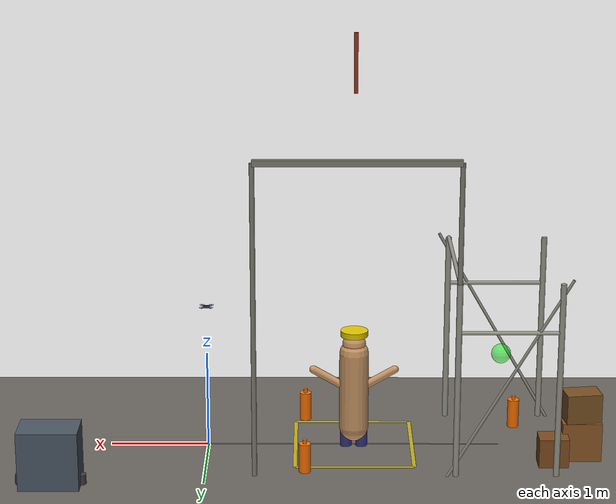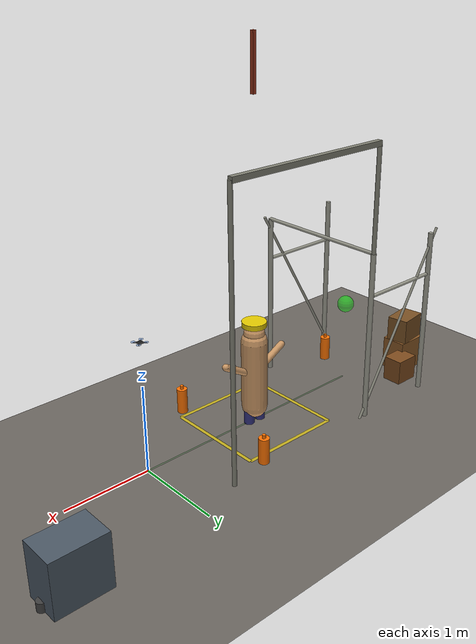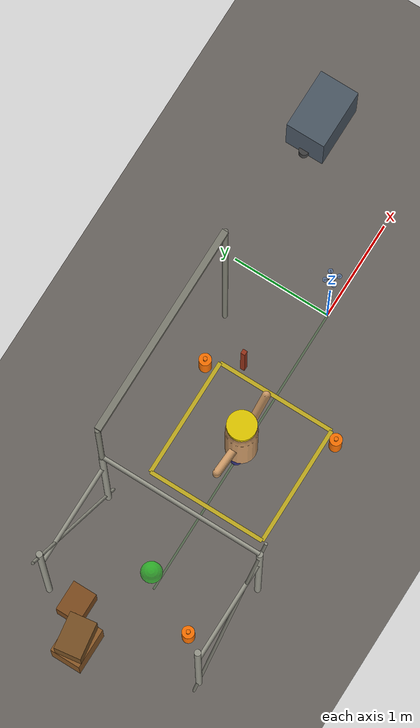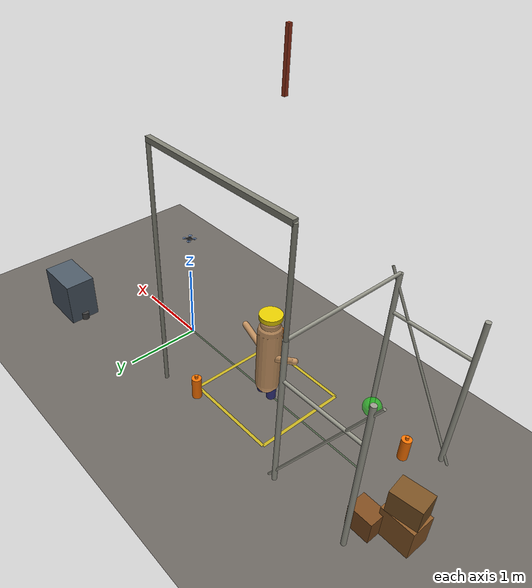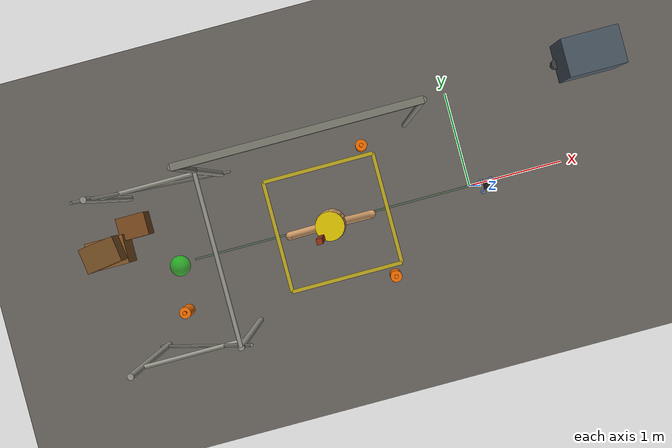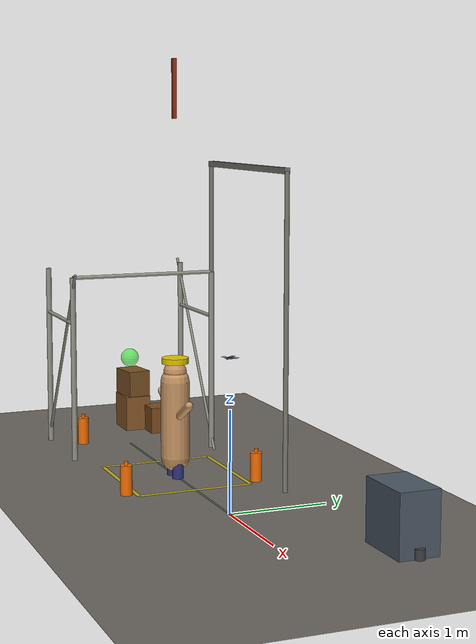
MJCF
<mujoco model="cf2_sacrifice_enriched">
  <option integrator="RK4" timestep="0.002" density="1.225" viscosity="1.8e-5"/>

  <!-- Offscreen rendering buffer for MjRenderer video capture -->
  <visual>
    <global offwidth="1920" offheight="1080"/>
    <quality shadowsize="4096"/>
    <rgba fog="0.15 0.15 0.2 1"/>
    <map znear="0.01" zfar="50"/>
  </visual>

  <worldbody>
    <!-- Lighting: 3-point setup for dramatic shadows -->
    <light pos="2 -3 6" dir="-0.2 0.3 -1" diffuse="0.7 0.7 0.8" specular="0.3 0.3 0.3" castshadow="true"/>
    <light pos="-4 2 5" dir="0.5 -0.3 -1" diffuse="0.4 0.35 0.3" castshadow="true"/>
    <light pos="0 0 8" dir="0 0 -1" diffuse="0.2 0.2 0.25" castshadow="false"/>

    <!-- Ground: concrete-colored with darker border -->
    <geom type="plane" size="10 10 0.01" rgba="0.42 0.40 0.38 1"/>

    <!-- ── Floor markings (thin boxes on ground) ── -->
    <!-- Hazard zone around human (yellow stripes) -->
    <geom type="box" pos="-1.5 -0.6 0.002" size="0.6 0.02 0.002" rgba="0.9 0.8 0.1 0.8"/>
    <geom type="box" pos="-1.5  0.6 0.002" size="0.6 0.02 0.002" rgba="0.9 0.8 0.1 0.8"/>
    <geom type="box" pos="-0.9 0.0 0.002" size="0.02 0.6 0.002" rgba="0.9 0.8 0.1 0.8"/>
    <geom type="box" pos="-2.1 0.0 0.002" size="0.02 0.6 0.002" rgba="0.9 0.8 0.1 0.8"/>

    <!-- Mission path indicator (subtle green line from origin to target) -->
    <geom type="box" pos="-1.5 0 0.001" size="1.5 0.01 0.001" rgba="0.2 0.5 0.2 0.3"/>

    <!-- ── Construction scaffolding (behind human, visual only) ── -->
    <!-- Vertical poles -->
    <geom type="cylinder" pos="-2.5 -0.8 1.0" size="0.03 1.0" rgba="0.6 0.6 0.55 1" contype="0" conaffinity="0"/>
    <geom type="cylinder" pos="-2.5  0.8 1.0" size="0.03 1.0" rgba="0.6 0.6 0.55 1" contype="0" conaffinity="0"/>
    <geom type="cylinder" pos="-3.5 -0.8 1.0" size="0.03 1.0" rgba="0.6 0.6 0.55 1" contype="0" conaffinity="0"/>
    <geom type="cylinder" pos="-3.5  0.8 1.0" size="0.03 1.0" rgba="0.6 0.6 0.55 1" contype="0" conaffinity="0"/>
    <!-- Horizontal bars -->
    <geom type="cylinder" pos="-3.0 -0.8 1.5" size="0.02 0.5" euler="0 90 0" rgba="0.6 0.6 0.55 1" contype="0" conaffinity="0"/>
    <geom type="cylinder" pos="-3.0  0.8 1.5" size="0.02 0.5" euler="0 90 0" rgba="0.6 0.6 0.55 1" contype="0" conaffinity="0"/>
    <geom type="cylinder" pos="-2.5  0.0 2.0" size="0.02 0.8" euler="90 0 0" rgba="0.6 0.6 0.55 1" contype="0" conaffinity="0"/>
    <!-- Cross braces -->
    <geom type="cylinder" pos="-3.0 -0.8 1.0" size="0.015 1.2" euler="0 30 0" rgba="0.55 0.55 0.5 1" contype="0" conaffinity="0"/>
    <geom type="cylinder" pos="-3.0  0.8 1.0" size="0.015 1.2" euler="0 -30 0" rgba="0.55 0.55 0.5 1" contype="0" conaffinity="0"/>

    <!-- ── Crates (near scaffolding, visual only) ── -->
    <geom type="box" pos="-3.8 0.3 0.2" size="0.2 0.15 0.2" rgba="0.55 0.35 0.15 1" contype="0" conaffinity="0"/>
    <geom type="box" pos="-3.5 0.5 0.15" size="0.15 0.12 0.15" rgba="0.50 0.30 0.12 1" contype="0" conaffinity="0"/>
    <geom type="box" pos="-3.8 0.3 0.55" size="0.18 0.13 0.15" rgba="0.48 0.32 0.14 1" euler="0 0 8" contype="0" conaffinity="0"/>

    <!-- ── Safety cones (orange, visual only) ── -->
    <geom type="cylinder" pos="-1.0 -0.7 0.15" size="0.06 0.15" rgba="1.0 0.45 0.0 1" contype="0" conaffinity="0"/>
    <geom type="cylinder" pos="-1.0 -0.7 0.32" size="0.02 0.02" rgba="1.0 0.45 0.0 1" contype="0" conaffinity="0"/>
    <geom type="cylinder" pos="-1.0  0.7 0.15" size="0.06 0.15" rgba="1.0 0.45 0.0 1" contype="0" conaffinity="0"/>
    <geom type="cylinder" pos="-1.0  0.7 0.32" size="0.02 0.02" rgba="1.0 0.45 0.0 1" contype="0" conaffinity="0"/>
    <geom type="cylinder" pos="-3.2 -0.5 0.15" size="0.06 0.15" rgba="1.0 0.45 0.0 1" contype="0" conaffinity="0"/>
    <geom type="cylinder" pos="-3.2 -0.5 0.32" size="0.02 0.02" rgba="1.0 0.45 0.0 1" contype="0" conaffinity="0"/>

    <!-- ── Tool cart (near origin, visual only) ── -->
    <geom type="box" pos="1.5 1.0 0.3" size="0.3 0.2 0.3" rgba="0.3 0.35 0.4 1" contype="0" conaffinity="0"/>
    <geom type="cylinder" pos="1.2 1.0 0.05" size="0.05 0.05" rgba="0.25 0.25 0.25 1" contype="0" conaffinity="0"/>
    <geom type="cylinder" pos="1.8 1.0 0.05" size="0.05 0.05" rgba="0.25 0.25 0.25 1" contype="0" conaffinity="0"/>

    <!-- ── The Drone (Crazyflie 2 — same physics as cf2_sacrifice) ── -->
    <body name="cf2" pos="0 0 1.5">
      <freejoint name="root"/>
      <inertial pos="0 0 0" mass="0.027" diaginertia="2.3951e-5 2.3951e-5 3.2347e-5"/>

      <!-- Central frame -->
      <geom type="box" size="0.03 0.03 0.005" rgba="0.1 0.1 0.1 1" name="frame"/>

      <!-- 4 arms -->
      <geom type="box" pos="0.033 0.033 0" size="0.025 0.004 0.003" euler="0 0 45" name="arm_fr"/>
      <geom type="box" pos="-0.033 0.033 0" size="0.025 0.004 0.003" euler="0 0 -45" name="arm_fl"/>
      <geom type="box" pos="-0.033 -0.033 0" size="0.025 0.004 0.003" euler="0 0 45" name="arm_bl"/>
      <geom type="box" pos="0.033 -0.033 0" size="0.025 0.004 0.003" euler="0 0 -45" name="arm_br"/>

      <!-- 4 rotor discs -->
      <geom type="cylinder" pos="0.046 0.046 0.006" size="0.023 0.001" rgba="0.4 0.6 0.9 0.5"/>
      <geom type="cylinder" pos="-0.046 0.046 0.006" size="0.023 0.001" rgba="0.4 0.6 0.9 0.5"/>
      <geom type="cylinder" pos="-0.046 -0.046 0.006" size="0.023 0.001" rgba="0.4 0.6 0.9 0.5"/>
      <geom type="cylinder" pos="0.046 -0.046 0.006" size="0.023 0.001" rgba="0.4 0.6 0.9 0.5"/>

      <!-- Sensor and actuation sites -->
      <site name="imu" pos="0 0 0"/>
      <site name="actuation" pos="0 0 0"/>
    </body>

    <!-- The Human Worker (kinematic — capsule torso + sphere head + hard hat) -->
    <body name="human" pos="-1.5 0 0" mocap="true">
      <geom type="capsule" size="0.15 0.4" pos="0 0 0.6" rgba="0.8 0.6 0.4 1" name="torso"/>
      <geom type="sphere" size="0.12" pos="0 0 1.1" rgba="0.8 0.6 0.4 1" name="head"/>
      <!-- Hard hat (visual only) -->
      <geom type="cylinder" size="0.14 0.03" pos="0 0 1.22" rgba="0.9 0.8 0.0 1" name="hardhat" contype="0" conaffinity="0"/>
      <!-- Arms (visual only) -->
      <geom type="capsule" size="0.04 0.25" pos="0.2 0 0.7" euler="0 60 0" rgba="0.8 0.6 0.4 1" contype="0" conaffinity="0"/>
      <geom type="capsule" size="0.04 0.25" pos="-0.2 0 0.7" euler="0 -60 0" rgba="0.8 0.6 0.4 1" contype="0" conaffinity="0"/>
      <!-- Legs (visual only) -->
      <geom type="capsule" size="0.06 0.3" pos="0.08 0 0.15" rgba="0.2 0.2 0.5 1" contype="0" conaffinity="0"/>
      <geom type="capsule" size="0.06 0.3" pos="-0.08 0 0.15" rgba="0.2 0.2 0.5 1" contype="0" conaffinity="0"/>
    </body>

    <!-- The Falling Beam — directly above human, high enough for drone to intercept -->
    <body name="beam" pos="-1.5 0 4.0">
      <freejoint name="beam_joint"/>
      <inertial pos="0 0 0" mass="0.3" diaginertia="0.0015 0.0015 0.00015"/>
      <geom type="box" size="0.02 0.02 0.3" rgba="0.6 0.2 0.1 1" name="steel_beam"
            condim="4" friction="0.8 0.005 0.0001"/>
    </body>

    <!-- Payload target (drone's mission objective) -->
    <site name="payload_target" pos="-3.0 0 1.0" rgba="0 1 0 0.5" size="0.1"/>

    <!-- ── Overhead beam structure (offset to not interfere with falling beam) ── -->
    <geom type="box" pos="-1.5 0.8 3.2" size="1.0 0.03 0.03" rgba="0.5 0.5 0.45 1" contype="0" conaffinity="0"/>
    <geom type="cylinder" pos="-0.5 0.8 1.6" size="0.025 1.6" rgba="0.5 0.5 0.45 1" contype="0" conaffinity="0"/>
    <geom type="cylinder" pos="-2.5 0.8 1.6" size="0.025 1.6" rgba="0.5 0.5 0.45 1" contype="0" conaffinity="0"/>
  </worldbody>

  <!-- Drone actuators (same as cf2_sacrifice) -->
  <actuator>
    <motor name="body_thrust"  site="actuation" gear="0 0 1 0 0 0" ctrlrange="0 0.6" ctrllimited="true"/>
    <motor name="roll_moment"  site="actuation" gear="0 0 0 1 0 0" ctrlrange="-0.005 0.005" ctrllimited="true"/>
    <motor name="pitch_moment" site="actuation" gear="0 0 0 0 1 0" ctrlrange="-0.005 0.005" ctrllimited="true"/>
    <motor name="yaw_moment"   site="actuation" gear="0 0 0 0 0 1" ctrlrange="-0.002 0.002" ctrllimited="true"/>
  </actuator>

  <sensor>
    <gyro name="body_gyro" site="imu"/>
    <accelerometer name="body_linacc" site="imu"/>
    <framequat name="body_quat" objtype="site" objname="imu"/>
  </sensor>
</mujoco>
